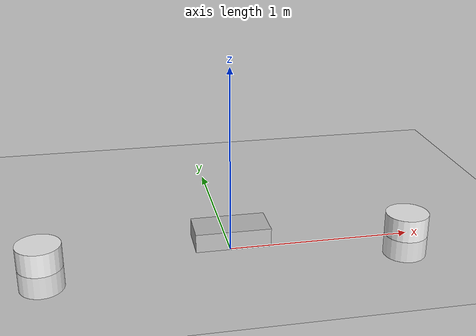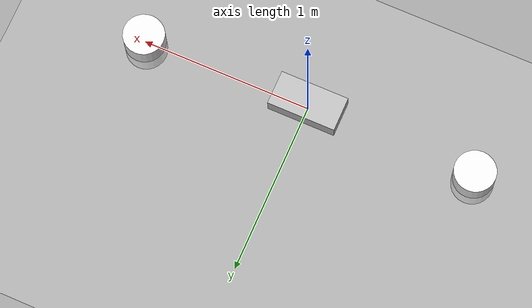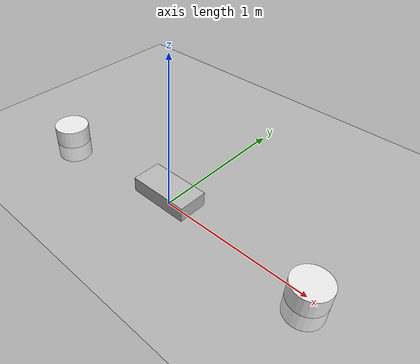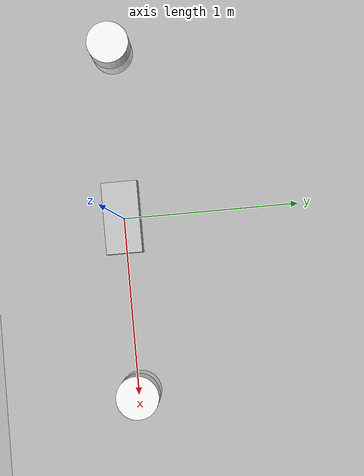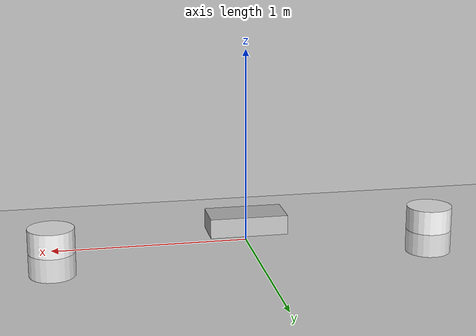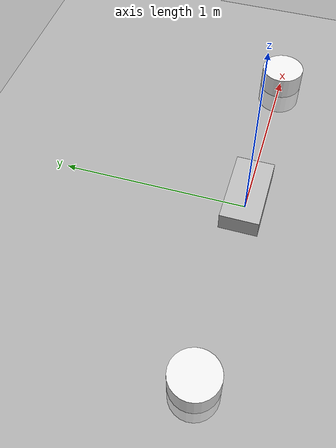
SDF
<?xml version="1.0"?>
<sdf version="1.6">
  <world name="my_world">
    <include>
      <uri>model://my_robot</uri>
    </include>
    <include>
      <uri>model://ground_plane</uri>
    </include>
    <include>
      <uri>model://obstacle1</uri>
      <pose>1 0 0 0 0 0</pose>
    </include>
    <include>
      <uri>model://obstacle2</uri>
      <pose>-1 0 0 0 0 0</pose>
    </include>
  </world>
</sdf>

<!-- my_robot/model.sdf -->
<sdf version='1.4'>
      <model name="my_robot">
      <static>true</static>
      <link name='chassis'>
            <pose>0 0 .1 0 0 0</pose>

            <collision name='collision'>
              <geometry>
                <box>
                  <size>.4 .2 .1</size>
                </box>
              </geometry>
            </collision>

            <visual name='visual'>
              <geometry>
                <box>
                  <size>.4 .2 .1</size>
                </box>
              </geometry>
            </visual>
          </link>
          </model>
    </sdf>

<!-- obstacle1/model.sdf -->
<sdf version='1.8'>
  <model name="obstacle1">
    <pose>2 2 0.25 0 0 0</pose>
    <static>false</static>
    <link name="link">
      <collision name="obstacle1_collision">
        <geometry>
          <cylinder>
            <radius>0.12</radius>
            <length>0.25</length>
          </cylinder>
        </geometry>
      </collision>
      <visual name="obstacle1_visual">
        <geometry>
          <cylinder>
            <radius>0.12</radius>
            <length>0.25</length>
          </cylinder>
        </geometry>
        <material>
          <script>
            <uri>file://media/materials/scripts/gazebo.material</uri>
            <name>Gazebo/White</name>
          </script>
        </material>
      </visual>
    </link>
  </model>
</sdf>

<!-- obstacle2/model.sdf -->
<sdf version='1.8'>
    <model name="obstacle2">
      <pose>-2 -2 0.25 0 0 0</pose>
      <static>false</static>
      <link name="link">
        <collision name="obstacle2_collision">
          <geometry>
            <cylinder>
              <radius>0.12</radius>
              <length>0.25</length>
            </cylinder>
          </geometry>
        </collision>

        <visual name="obstacle2_visual">
          <geometry>
            <cylinder>
              <radius>0.12</radius>
              <length>0.25</length>
            </cylinder>
          </geometry>
          <material>
            <script>
              <uri>file://media/materials/scripts/gazebo.material</uri>
              <name>Gazebo/White</name>
            </script>
          </material>
        </visual>
      </link>
    </model>
</sdf>
